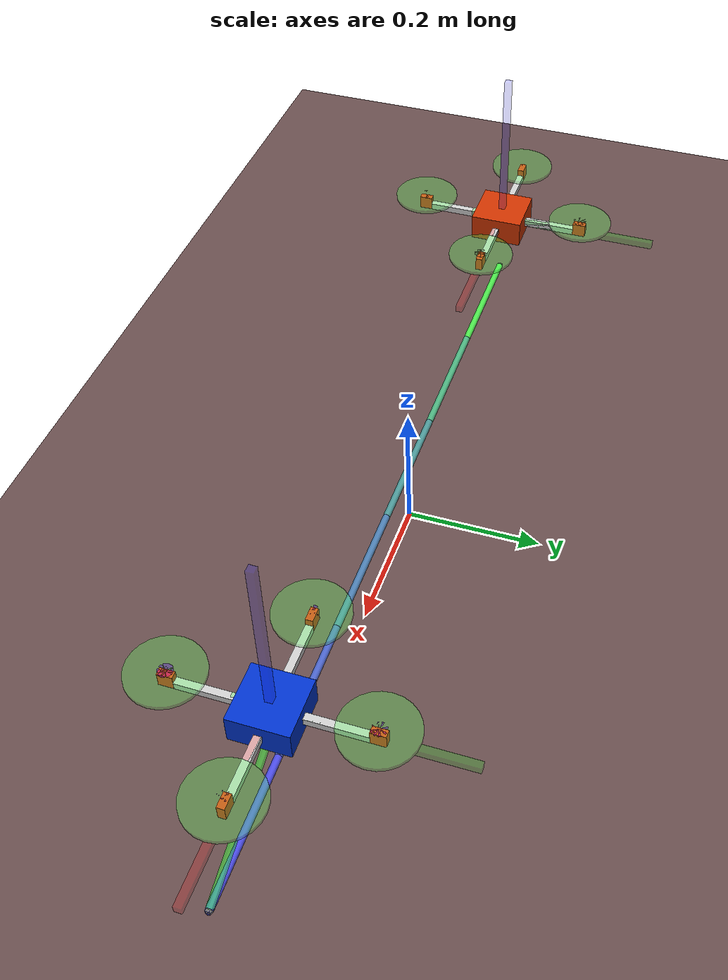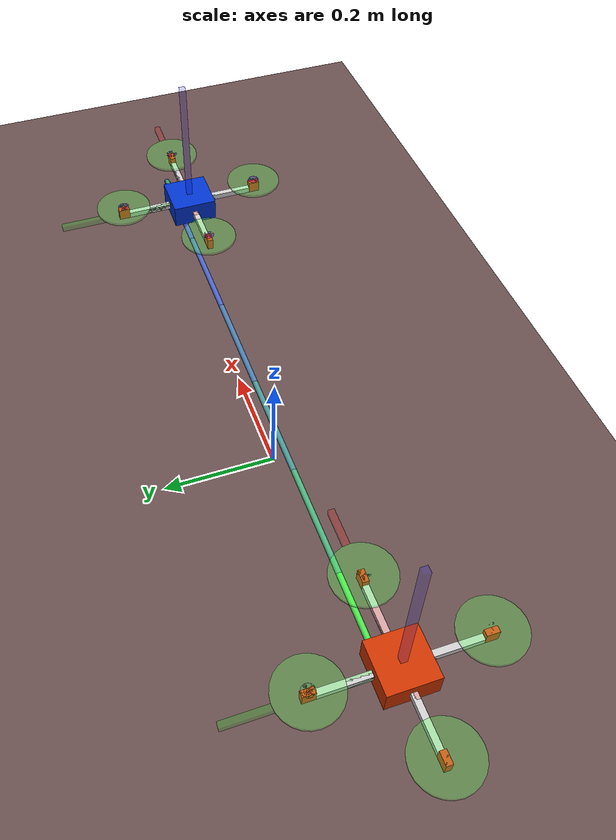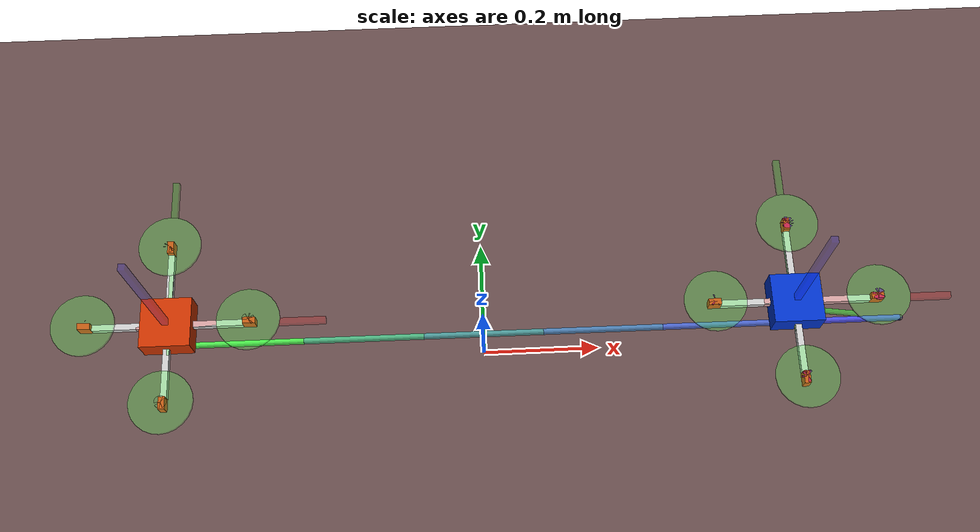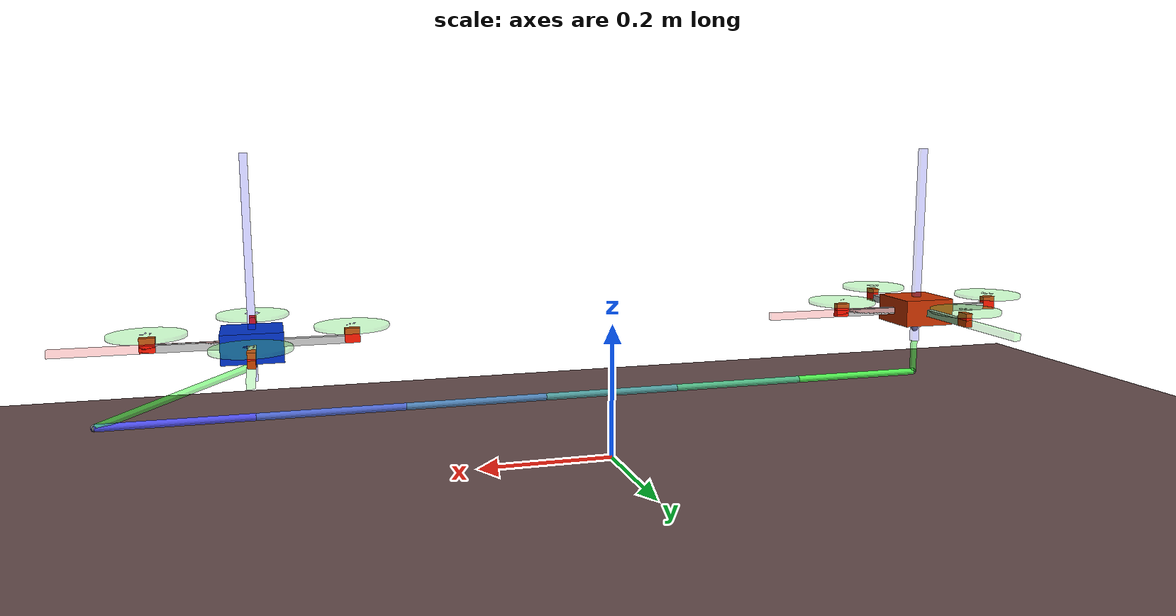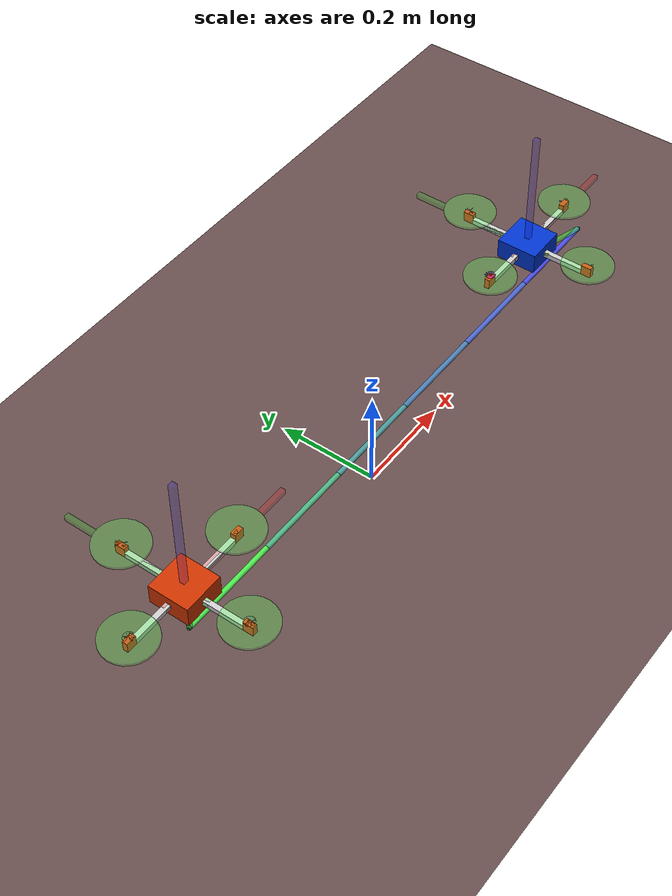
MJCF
<mujoco model="quadrotorplus">
    <compiler angle="degree" inertiafromgeom="true" coordinate="local"/>
    <option	timestep="0.01" gravity="0 0 -9.81" density="1" viscosity="1e-5" integrator="RK4"/>

    <default>
        <joint armature="1" damping="1" limited="true"/>
        <geom conaffinity="0" condim="3" density="5.0" friction="1 0.5 0.5" margin="0.01" rgba="0.8 0.6 0.4 1"/>
    </default>

    <asset>
        <texture builtin="gradient" type="skybox" height="100" width="100" rgb1="1 1 1" rgb2="0 0 0"/>
        <texture name="texgeom" builtin="flat" height="1278" mark="cross" markrgb="1 1 1" random="0.01" rgb1="0.8 0.6 0.4" rgb2="0.8 0.6 0.4" type="cube" width="127"/>
        <texture name="texplane" builtin="checker" height="100" width="100" rgb1="0 0 0" rgb2="0.8 0.8 0.8" type="2d"/>
        <material name="MatPlane" reflectance="0.5" shininess="1" specular="1" texrepeat="60 60" texture="texplane"/>
        <material name="geom" texture="texgeom" texuniform="true"/>
    </asset>

    <worldbody>
        <light cutoff="100" diffuse="1 1 1" dir="-0 0 -1.3" directional="true" exponent="1" pos="0 0 1.3" specular=".1 .1 .1"/>
        <geom conaffinity="1" condim="3" material="MatPlane" name="floor" pos="0 0 0" rgba="0.4 0.3 0.3 1" size="5 5 0.2" type="plane"/>

        <!-- FIRST QUADROTOR -->
        <body name="core_1" pos="-0.5 0 0.2">
            <geom name="core_geom_1" type="box" pos="0 0 0" quat="1 0 0 0" size=".04 .04 .02" rgba=".8 .2 0 1" mass=".1"/>
            <joint name="root_1" type="free" damping="0" armature="0" pos="0 0 0" limited="false"/>

            <!-- Site en el centro del cuerpo para aplicar wrench (u1,u2,u3,u4) -->
            <site name="com_site_1" pos="0 0 0" size="0.006" rgba="1 0 0 1"/>

            <!-- brazos y motores -->
            <geom name="arm_front0_1" type="box" pos=".08 0 0" size=".04 .005 .005" quat="1 0 0 0" rgba=".8 .8 .8 1" mass=".02"/>
            <geom name="arm_back0_1" type="box" pos="-.08 0 0" size=".04 .005 .005" quat="0 0 0 1" rgba=".8 .8 .8 1" mass=".02"/>
            <geom name="arm_left0_1" type="box" pos="0 .08 0" size=".04 .005 .005" quat=".707 0 0 .707" rgba=".8 .8 .8 1" mass=".02"/>
            <geom name="arm_right0_1" type="box" pos="0 -.08 0" size=".04 .005 .005" quat=".707 0 0 -.707" rgba=".8 .8 .8 1" mass=".02"/>

            <body name="arm_front1_1" pos=".12 0 0">
                <geom type="box" pos=".01 0 .005" size=".01 .005 .01" quat="1 0 0 0" rgba="1 .1 0 1" mass=".02"/>
                <body name="thruster0_1" pos="0.01 0 0.015">
                    <geom type="cylinder" pos="0 0 .0025" size=".05 .0025" quat="1 0 0 0" rgba=".3 1 .3 0.3" mass=".005"/>
                    <site name="motor0_1" type="cylinder" pos="0 0 .0025" size=".01 .0025" quat="1 0 0 0" rgba=".3 1 .3 0.3"/>
                </body>
            </body>

            <body name="arm_back1_1" pos="-.12 0 0">
                <geom type="box" pos="-.01 0 .005" size=".01 .005 .01" quat="0 0 0 1" rgba="1 .1 0 1" mass=".02"/>
                <body name="thruster1_1" pos="-0.01 0 .015">
                    <geom type="cylinder" pos="0 0 .0025" size=".05 .0025" quat="1 0 0 0" rgba=".3 1 .3 0.3" mass=".005"/>
                    <site name="motor1_1" type="cylinder" pos="0 0 .0025" size=".01 .0025" quat="1 0 0 0" rgba=".3 1 .3 0.3"/>
                </body>
            </body>

            <body name="arm_left1_1" pos="0 .12 0">
                <geom type="box" pos="0 .01 .005" size=".01 .005 .01" quat=".7071068 0 0 .7071068" rgba="1 .1 0 1" mass=".02"/>
                <body name="thruster2_1" pos="0 0.01 0.015">
                    <geom type="cylinder" pos="0 0 .0025" size=".05 .0025" quat="1 0 0 0" rgba=".3 1 .3 0.3" mass=".005"/>
                    <site name="motor2_1" type="cylinder" pos="0 0 .0025" size=".01 0.0025" quat="1 0 0 0" rgba=".3 1 .3 0.3"/>
                </body>
            </body>

            <body name="arm_right1_1" pos="0 -.12 0">
                <geom type="box" pos="0 -.01 .005" size=".01 .005 .01" quat=".7071068 0 0 -.7071068" rgba="1 .1 0 1" mass=".02"/>
                <body name="thruster3_1" pos="0 -0.01 .015">
                    <geom type="cylinder" pos="0 0 .0025" size=".05 .0025" quat="1 0 0 0" rgba=".3 1 .3 0.3" mass=".005"/>
                    <site type="cylinder" pos="0 0 .0025" size=".01 .0025" quat="1 0 0 0" rgba=".3 1 .3 0.3" name="motor3_1"/>
                </body>
            </body>

            <site name="x_axis_1" type="box" pos=".1 .0 .0" size=".15 .005 .005" quat="1 0 0 0" rgba="1 0 0 0.2"/>
            <site name="y_axis_1" type="box" pos=".0 .1 .0" size=".15 .005 .005" quat=".707 0 0 .707" rgba="0 1 0 0.2"/>
            <site name="z_axis_1" type="box" pos=".0 .0 .1" size=".15 .005 .005" quat="-.707 0 .707 0" rgba="0 0 1 0.2"/>

            <site name="attach_left" pos="0 0 -0.03"/>
        </body>

        <!-- SECOND QUADROTOR -->
        <body name="core_2" pos="0.5 0 0.2">
            <geom name="core_geom_2" type="box" pos="0 0 0" quat="1 0 0 0" size=".04 .04 .02" rgba="0 0.2 0.8 1" mass=".1"/>
            <joint name="root_2" type="free" damping="0" armature="0" pos="0 0 0" limited="false"/>

            <!-- Site en el centro del cuerpo para aplicar wrench (u1,u2,u3,u4) -->
            <site name="com_site_2" pos="0 0 0" size="0.006" rgba="1 0 0 1"/>

            <geom name="arm_front0_2" type="box" pos=".08 0 0" size=".04 .005 .005" quat="1 0 0 0" rgba=".8 .8 .8 1" mass=".02"/>
            <geom name="arm_back0_2" type="box" pos="-.08 0 0" size=".04 .005 .005" quat="0 0 0 1" rgba=".8 .8 .8 1" mass=".02"/>
            <geom name="arm_left0_2" type="box" pos="0 .08 0" size=".04 .005 .005" quat=".707 0 0 .707" rgba=".8 .8 .8 1" mass=".02"/>
            <geom name="arm_right0_2" type="box" pos="0 -.08 0" size=".04 .005 .005" quat=".707 0 0 -.707" rgba=".8 .8 .8 1" mass=".02"/>

            <body name="arm_front1_2" pos=".12 0 0">
                <geom type="box" pos=".01 0 .005" size=".01 .005 .01" quat="1 0 0 0" rgba="1 .1 0 1" mass=".02"/>
                <body name="thruster0_2" pos="0.01 0 0.015">
                    <geom type="cylinder" pos="0 0 .0025" size=".05 .0025" quat="1 0 0 0" rgba=".3 1 .3 0.3" mass=".005"/>
                    <site name="motor0_2" type="cylinder" pos="0 0 .0025" size=".01 .0025" quat="1 0 0 0" rgba=".3 .3 1 0.3"/>
                </body>
            </body>

            <body name="arm_back1_2" pos="-.12 0 0">
                <geom type="box" pos="-.01 0 .005" size=".01 .005 .01" quat="0 0 0 1" rgba="1 .1 0 1" mass=".02"/>
                <body name="thruster1_2" pos="-0.01 0 .015">
                    <geom type="cylinder" pos="0 0 .0025" size=".05 .0025" quat="1 0 0 0" rgba=".3 1 .3 0.3" mass=".005"/>
                    <site name="motor1_2" type="cylinder" pos="0 0 .0025" size=".01 .0025" quat="1 0 0 0" rgba=".3 .3 1 0.3"/>
                </body>
            </body>

            <body name="arm_left1_2" pos="0 .12 0">
                <geom type="box" pos="0 .01 .005" size=".01 .005 .01" quat=".7071068 0 0 .7071068" rgba="1 .1 0 1" mass=".02"/>
                <body name="thruster2_2" pos="0 0.01 0.015">
                    <geom type="cylinder" pos="0 0 .0025" size=".05 .0025" quat="1 0 0 0" rgba=".3 1 .3 0.3" mass=".005"/>
                    <site name="motor2_2" type="cylinder" pos="0 0 .0025" size=".01 0.0025" quat="1 0 0 0" rgba=".3 .3 1 0.3"/>
                </body>
            </body>

            <body name="arm_right1_2" pos="0 -.12 0">
                <geom type="box" pos="0 -.01 .005" size=".01 .005 .01" quat=".7071068 0 0 -.7071068" rgba="1 .1 0 1" mass=".02"/>
                <body name="thruster3_2" pos="0 -0.01 .015">
                    <geom type="cylinder" pos="0 0 .0025" size=".05 .0025" quat="1 0 0 0" rgba=".3 1 .3 0.3" mass=".005"/>
                    <site type="cylinder" pos="0 0 .0025" size=".01 .0025" quat="1 0 0 0" rgba=".3 .3 1 0.3" name="motor3_2"/>
                </body>
            </body>

            <site name="x_axis_2" type="box" pos=".1 .0 .0" size=".15 .005 .005" quat="1 0 0 0" rgba="1 0 0 0.2"/>
            <site name="y_axis_2" type="box" pos=".0 .1 .0" size=".15 .005 .005" quat=".707 0 0 .707" rgba="0 1 0 0.2"/>
            <site name="z_axis_2" type="box" pos=".0 .0 .1" size=".15 .005 .005" quat="-.707 0 .707 0" rgba="0 0 1 0.2"/>

            <site name="attach_right" pos="0 0 -0.03"/>
        </body>
        <!-- 🔗 Barra flexible con 6 segmentos articulados -->
        <body name="bar_seg1" pos="-0.500 0 0.1">
            <joint name="bar_free" type="free" damping="0.050" stiffness="0.100"/>
            <geom type="capsule" fromto="0 0 0 0.200 0 0" size="0.005" rgba="0.3 0.9 0.3 1" mass="0.017"/>
            <site name="bar_left" pos="0 0 0"/>
            <body name="bar_seg2" pos="0.200 0 0">
                <joint type="hinge" axis="0 1 1" range="-180 180" damping="0.0005" stiffness="0.1" armature="0" limited="false"/>
                <geom type="capsule" fromto="0 0 0 0.200 0 0" size="0.005" rgba="0.3 0.70 0.50 1" mass="0.017"/>
            <body name="bar_seg3" pos="0.200 0 0">
                <joint type="hinge" axis="0 1 1" range="-180 180" damping="0.0005" stiffness="0.1" armature="0" limited="false"/>
                <geom type="capsule" fromto="0 0 0 0.200 0 0" size="0.005" rgba="0.3 0.60 0.60 1" mass="0.017"/>
            <body name="bar_seg4" pos="0.200 0 0">
                <joint type="hinge" axis="0 1 1" range="-180 180" damping="0.0005" stiffness="0.1" armature="0" limited="false"/>
                <geom type="capsule" fromto="0 0 0 0.200 0 0" size="0.005" rgba="0.3 0.50 0.70 1" mass="0.017"/>
            <body name="bar_seg5" pos="0.200 0 0">
                <joint type="hinge" axis="0 1 1" range="-180 180" damping="0.0005" stiffness="0.1" armature="0" limited="false"/>
                <geom type="capsule" fromto="0 0 0 0.200 0 0" size="0.005" rgba="0.3 0.40 0.80 1" mass="0.017"/>
            <body name="bar_seg6" pos="0.200 0 0">
                <joint type="hinge" axis="0 1 1" range="-180 180" damping="0.0005" stiffness="0.1" armature="0" limited="false"/>
                <geom type="capsule" fromto="0 0 0 0.200 0 0" size="0.005" rgba="0.3 0.30 0.90 1" mass="0.017"/>
                <site name="bar_right" pos="0.200 0 0"/>
            </body>
            </body>
            </body>
            </body>
            </body>
        </body>
    </worldbody>

    <!-- 🌈 Tendones elásticos que unen drones y barra -->
    <tendon>
        <spatial name="tendon_left"
                 limited="true" range="0.01 0.03"
                 springlength="0.1" stiffness="20" damping="3"
                 rgba="0.2 1 0.2 0.5" width="0.005">
            <site site="attach_left"/>
            <site site="bar_left"/>
        </spatial>

        <spatial name="tendon_right"
                 limited="true" range="0.01 0.03"
                 springlength="0.25" stiffness="20" damping="3"
                 rgba="0.2 1 0.2 0.5" width="0.005">
            <site site="attach_right"/>
            <site site="bar_right"/>
        </spatial>
    </tendon>

    <actuator>
        <!-- DRON 1: u1,u2,u3,u4 -->
        <general name="u1_thrust_1" site="com_site_1"
                ctrllimited="true" ctrlrange="0 60"
                gear="0 0 1  0 0 0"/>

        <general name="u2_tau_x_1" site="com_site_1"
                ctrllimited="true" ctrlrange="-10 10"
                gear="0 0 0  1 0 0"/>

        <general name="u3_tau_y_1" site="com_site_1"
                ctrllimited="true" ctrlrange="-10 10"
                gear="0 0 0  0 1 0"/>

        <general name="u4_tau_z_1" site="com_site_1"
                ctrllimited="true" ctrlrange="-5 5"
                gear="0 0 0  0 0 1"/>

        <!-- DRON 2: u1,u2,u3,u4 -->
        <general name="u1_thrust_2" site="com_site_2"
                ctrllimited="true" ctrlrange="0 60"
                gear="0 0 1  0 0 0"/>

        <general name="u2_tau_x_2" site="com_site_2"
                ctrllimited="true" ctrlrange="-10 10"
                gear="0 0 0  1 0 0"/>

        <general name="u3_tau_y_2" site="com_site_2"
                ctrllimited="true" ctrlrange="-10 10"
                gear="0 0 0  0 1 0"/>

        <general name="u4_tau_z_2" site="com_site_2"
                ctrllimited="true" ctrlrange="-5 5"
                gear="0 0 0  0 0 1"/>
    </actuator>

    <sensor>
        <!-- Primer dron -->
        <framepos  name="pos_core_1"  objtype="body" objname="core_1"/>
        <framequat name="quat_core_1" objtype="body" objname="core_1"/>

        <!-- Segundo dron -->
        <framepos  name="pos_core_2"  objtype="body" objname="core_2"/>
        <framequat name="quat_core_2" objtype="body" objname="core_2"/>
    </sensor>

</mujoco>
